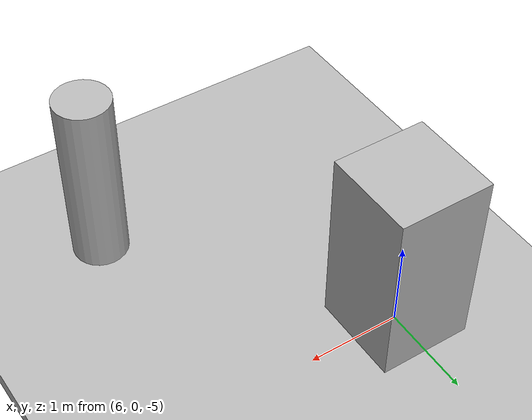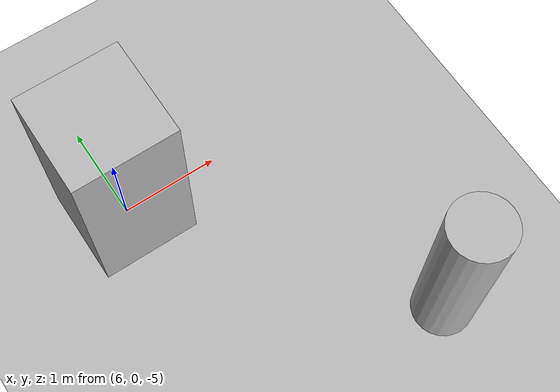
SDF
<?xml version="1.0"?>
<sdf version="1.7">
  <world name="sonar_smoke">
    <physics name="1ms" type="ignored">
      <max_step_size>0.001</max_step_size>
      <real_time_factor>1.0</real_time_factor>
    </physics>
    <plugin filename="gz-sim-physics-system" name="gz::sim::systems::Physics"/>
    <plugin filename="gz-sim-sensors-system" name="gz::sim::systems::Sensors">
      <render_engine>ogre2</render_engine>
    </plugin>
    <plugin filename="gz-sim-user-commands-system" name="gz::sim::systems::UserCommands"/>
    <plugin filename="gz-sim-scene-broadcaster-system" name="gz::sim::systems::SceneBroadcaster"/>
    <plugin filename="multibeam_sonar_system" name="custom::MultibeamSonarSystem"/>
    <scene><ambient>0.8 0.8 0.8 1</ambient><background>0.1 0.2 0.3 1</background></scene>
    <light type="directional" name="sun">
      <cast_shadows>false</cast_shadows>
      <pose>0 0 10 0 0 0</pose>
      <diffuse>0.8 0.8 0.8 1</diffuse>
      <direction>-0.5 0.1 -0.9</direction>
    </light>
    <model name="seabed">
      <static>true</static>
      <link name="l">
        <collision name="c"><geometry><box><size>80 80 0.2</size></box></geometry></collision>
        <visual name="v"><geometry><box><size>80 80 0.2</size></box></geometry></visual>
      </link>
      <pose>0 0 -5.1 0 0 0</pose>
    </model>
    <model name="box_target">
      <static>true</static>
      <pose>6 0 -4 0 0 0</pose>
      <link name="l">
        <collision name="c"><geometry><box><size>1 1 2</size></box></geometry></collision>
        <visual name="v"><geometry><box><size>1 1 2</size></box></geometry></visual>
      </link>
    </model>
    <model name="cyl_target">
      <static>true</static>
      <pose>8 -2.5 -4 0 0 0</pose>
      <link name="l">
        <collision name="c"><geometry><cylinder><radius>0.3</radius><length>2</length></cylinder></geometry></collision>
        <visual name="v"><geometry><cylinder><radius>0.3</radius><length>2</length></cylinder></geometry></visual>
      </link>
    </model>
    <model name="rov">
      <static>true</static>
      <pose>0 0 -3 0 0 0</pose>
      <link name="base">
        <sensor name="multibeam_sonar" type="custom" gz:type="multibeam_sonar">
          <always_on>true</always_on>
          <update_rate>10.0</update_rate>
          <topic>/sensor/multibeam_sonar</topic>
          <visualize>false</visualize>
          <gz:multibeam_sonar>
            <ray degrees="false">
              <scan>
                <horizontal><beams>512</beams><min_angle>-1.13447</min_angle><max_angle>1.13447</max_angle></horizontal>
                <vertical><rays>300</rays><min_angle>-0.10472</min_angle><max_angle>0.10472</max_angle></vertical>
              </scan>
              <range><min>0.1</min><max>10.0</max></range>
            </ray>
            <spec>
              <verticalFOV>12</verticalFOV>
              <sonarFreq>900e3</sonarFreq>
              <bandwidth>29.9e3</bandwidth>
              <soundSpeed>1500</soundSpeed>
              <sourceLevel>220</sourceLevel>
              <maxDistance>10</maxDistance>
              <raySkips>10</raySkips>
              <sensorGain>0.02</sensorGain>
              <blazingSonarImage>true</blazingSonarImage>
              <writeLog>false</writeLog>
              <debugFlag>false</debugFlag>
              <writeFrameInterval>5</writeFrameInterval>
              <pointCloudTopicName>point_cloud</pointCloudTopicName>
              <sonarImageRawTopicName>sonar_image_raw</sonarImageRawTopicName>
              <sonarImageTopicName>sonar_image</sonarImageTopicName>
              <frameName>sonar_link</frameName>
            </spec>
          </gz:multibeam_sonar>
        </sensor>
      </link>
    </model>
  </world>
</sdf>
